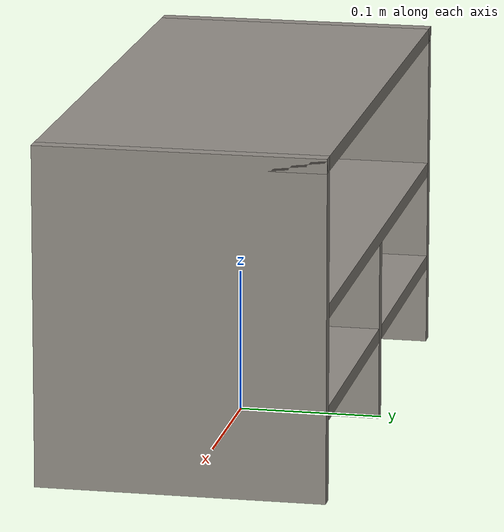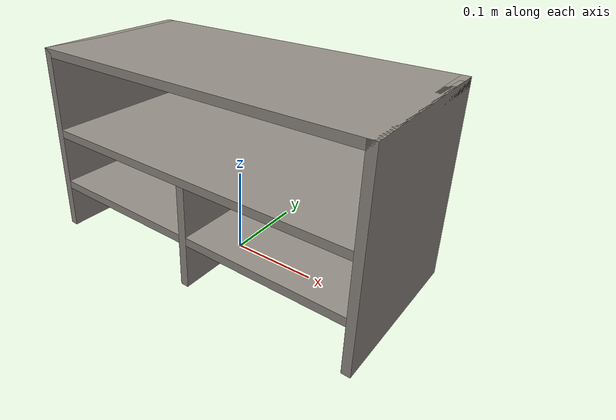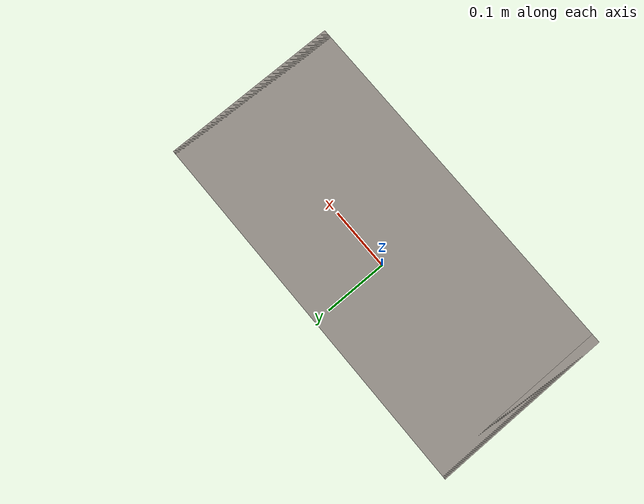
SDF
<?xml version="1.0"?>
<sdf version="1.9">
  <model name="furinno_shelf">
    <static>true</static>
    <link name="link">

      <collision name="side_l_col">
        <pose>-0.2035 0 0.1175 0 0 0</pose>
        <geometry><box><size>0.010 0.198 0.235</size></box></geometry>
        <surface><contact><collide_bitmask>0x0001</collide_bitmask></contact></surface>
      </collision>
      <visual name="side_l_vis">
        <pose>-0.2035 0 0.1175 0 0 0</pose>
        <geometry><box><size>0.010 0.198 0.235</size></box></geometry>
        <material>
          <ambient>0.45 0.44 0.42 1</ambient>
          <diffuse>0.58 0.56 0.53 1</diffuse>
          <specular>0.12 0.12 0.12 1</specular>
        </material>
      </visual>

      <collision name="side_r_col">
        <pose>0.2035 0 0.1175 0 0 0</pose>
        <geometry><box><size>0.010 0.198 0.235</size></box></geometry>
        <surface><contact><collide_bitmask>0x0001</collide_bitmask></contact></surface>
      </collision>
      <visual name="side_r_vis">
        <pose>0.2035 0 0.1175 0 0 0</pose>
        <geometry><box><size>0.010 0.198 0.235</size></box></geometry>
        <material>
          <ambient>0.45 0.44 0.42 1</ambient>
          <diffuse>0.58 0.56 0.53 1</diffuse>
          <specular>0.12 0.12 0.12 1</specular>
        </material>
      </visual>

      <collision name="top_col">
        <pose>0 0 0.230 0 0 0</pose>
        <geometry><box><size>0.417 0.198 0.010</size></box></geometry>
        <surface><contact><collide_bitmask>0x0001</collide_bitmask></contact></surface>
      </collision>
      <visual name="top_vis">
        <pose>0 0 0.230 0 0 0</pose>
        <geometry><box><size>0.417 0.198 0.010</size></box></geometry>
        <material>
          <ambient>0.45 0.44 0.42 1</ambient>
          <diffuse>0.58 0.56 0.53 1</diffuse>
          <specular>0.12 0.12 0.12 1</specular>
        </material>
      </visual>

      <collision name="mid_shelf_col">
        <pose>0 0 0.130 0 0 0</pose>
        <geometry><box><size>0.397 0.198 0.010</size></box></geometry>
        <surface><contact><collide_bitmask>0x0001</collide_bitmask></contact></surface>
      </collision>
      <visual name="mid_shelf_vis">
        <pose>0 0 0.130 0 0 0</pose>
        <geometry><box><size>0.397 0.198 0.010</size></box></geometry>
        <material>
          <ambient>0.45 0.44 0.42 1</ambient>
          <diffuse>0.58 0.56 0.53 1</diffuse>
          <specular>0.12 0.12 0.12 1</specular>
        </material>
      </visual>

      <collision name="low_shelf_col">
        <pose>0 0 0.060 0 0 0</pose>
        <geometry><box><size>0.397 0.198 0.010</size></box></geometry>
        <surface><contact><collide_bitmask>0x0001</collide_bitmask></contact></surface>
      </collision>
      <visual name="low_shelf_vis">
        <pose>0 0 0.060 0 0 0</pose>
        <geometry><box><size>0.397 0.198 0.010</size></box></geometry>
        <material>
          <ambient>0.45 0.44 0.42 1</ambient>
          <diffuse>0.58 0.56 0.53 1</diffuse>
          <specular>0.12 0.12 0.12 1</specular>
        </material>
      </visual>

      <collision name="divider_col">
        <pose>0 0 0.0625 0 0 0</pose>
        <geometry><box><size>0.010 0.198 0.125</size></box></geometry>
        <surface><contact><collide_bitmask>0x0001</collide_bitmask></contact></surface>
      </collision>
      <visual name="divider_vis">
        <pose>0 0 0.0625 0 0 0</pose>
        <geometry><box><size>0.010 0.198 0.125</size></box></geometry>
        <material>
          <ambient>0.45 0.44 0.42 1</ambient>
          <diffuse>0.58 0.56 0.53 1</diffuse>
          <specular>0.12 0.12 0.12 1</specular>
        </material>
      </visual>

    </link>
  </model>
</sdf>
